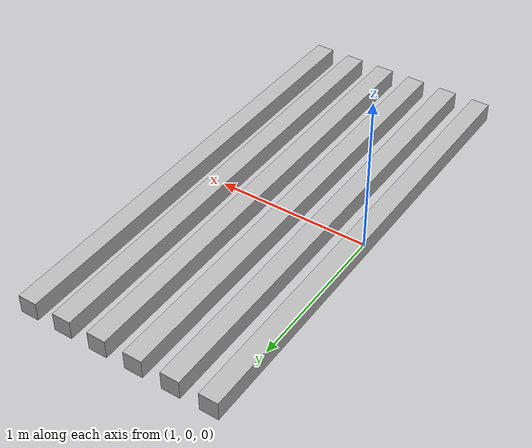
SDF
<?xml version='1.0'?>
<sdf version='1.4'>
  <model name="pallet">
    <static>true</static>
    <pose>0 0 0.07 0 0 0</pose>

    <link name='stairs1'>
      <pose>1.0 0 0.0 0 0 0</pose>

      <collision name='collision'>
        <geometry>
          <box>
            <size>0.12 3.0 0.12</size>
          </box>
        </geometry>
      </collision>

      <visual name='visual'>
        <geometry>
          <box>
            <size>0.12 3.0 0.12</size>
          </box>
        </geometry>
      </visual>
    </link>

    <link name='stairs2'>
      <pose>1.24 0 0 0 0 0</pose>

      <collision name='collision'>
        <geometry>
          <box>
            <size>0.12 3.0 0.12</size>
          </box>
        </geometry>
      </collision>

      <visual name='visual'>
        <geometry>
          <box>
            <size>0.12 3.0 0.12</size>
          </box>
        </geometry>
      </visual>
    </link>

    <link name='stairs3'>
      <pose>1.48 0 0 0 0 0</pose>

      <collision name='collision'>
        <geometry>
          <box>
            <size>0.12 3.0 0.12</size>
          </box>
        </geometry>
      </collision>

      <visual name='visual'>
        <geometry>
          <box>
            <size>0.12 3.0 0.12</size>
          </box>
        </geometry>
      </visual>
    </link>

    <link name='stairs4'>
      <pose>1.72 0 0 0 0 0</pose>

      <collision name='collision'>
        <geometry>
          <box>
            <size>0.12 3.0 0.12</size>
          </box>
        </geometry>
      </collision>

      <visual name='visual'>
        <geometry>
          <box>
            <size>0.12 3.0 0.12</size>
          </box>
        </geometry>
      </visual>
    </link>

    <link name='stairs5'>
      <pose>1.96 0 0 0 0 0</pose>

      <collision name='collision'>
        <geometry>
          <box>
            <size>0.12 3.0 0.12</size>
          </box>
        </geometry>
      </collision>

      <visual name='visual'>
        <geometry>
          <box>
            <size>0.12 3.0 0.12</size>
          </box>
        </geometry>
      </visual>
    </link>

    <link name='stairs6'>
      <pose>2.20 0 0 0 0 0</pose>

      <collision name='collision'>
        <geometry>
          <box>
            <size>0.12 3.0 0.12</size>
          </box>
        </geometry>
      </collision>

      <visual name='visual'>
        <geometry>
          <box>
            <size>0.12 3.0 0.12</size>
          </box>
        </geometry>
      </visual>
    </link>

  </model>
</sdf>
